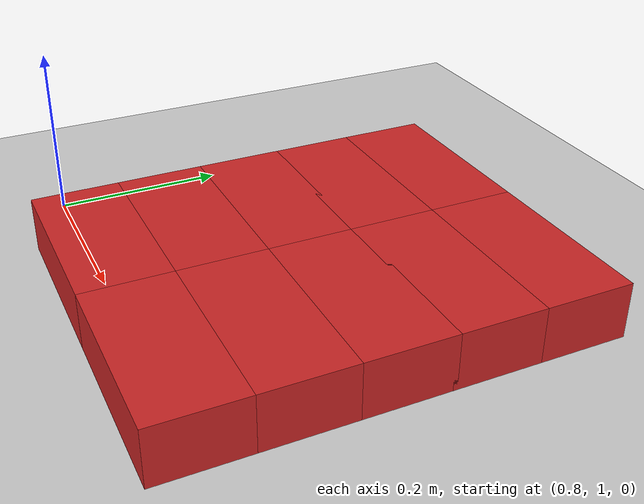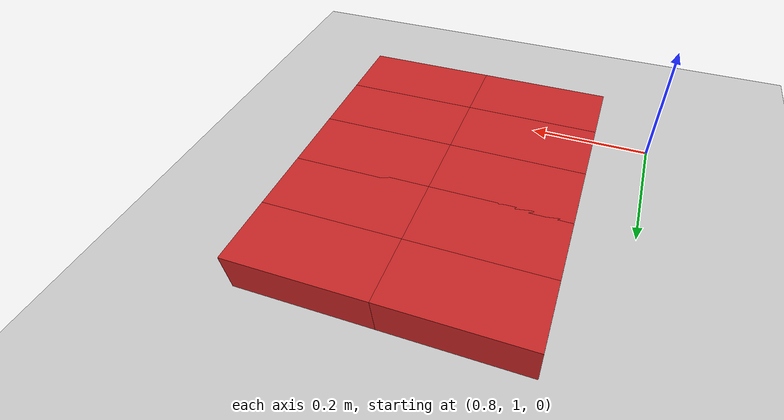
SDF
<?xml version="1.0" ?>
<sdf version="1.6">
    <world name="default">
        <include>
            <uri>model://ground_plane</uri>
        </include>
        <include>
            <uri>model://sun</uri>
        </include>

        <include>
            <uri>model://standard_brick</uri>
            <pose>1 1 0.0325  0 0 0</pose>
        </include>
        <include>
            <uri>model://standard_brick</uri>
            <pose>1 1.1025 0.0325  0 0 0</pose>
        </include>
        <include>
            <uri>model://standard_brick</uri>
            <pose>1 1.205 0.0325  0 0 0</pose>
        </include>
        <include>
            <uri>model://standard_brick</uri>
            <pose>1 1.3025 0.0325  0 0 0</pose>
        </include>
        <include>
            <uri>model://standard_brick</uri>
            <pose>1 1.405 0.0325  0 0 0</pose>
        </include>
        <include>
            <uri>model://standard_brick</uri>
            <pose>1.215 1 0.0325  0 0 0</pose>
        </include>
        <include>
            <uri>model://standard_brick</uri>
            <pose>1.215 1.1025 0.0325  0 0 0</pose>
        </include>
        <include>
            <uri>model://standard_brick</uri>
            <pose>1.215 1.205 0.0325  0 0 0</pose>
        </include>
        <include>
            <uri>model://standard_brick</uri>
            <pose>1.215 1.3025 0.0325  0 0 0</pose>
        </include>
        <include>
            <uri>model://standard_brick</uri>
            <pose>1.215 1.405 0.0325  0 0 0</pose>
        </include>
    </world>
</sdf>

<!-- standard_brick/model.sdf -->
<sdf version='1.6'>
  <model name='standard_brick'>
    <link name='link'>
      <inertial>
        <mass>2.04117</mass>
        <inertia>
          <ixx>0.00250575</ixx>
          <ixy>0</ixy>
          <ixz>0</ixz>
          <iyy>0.00858142</iyy>
          <iyz>0</iyz>
          <izz>0.00964984</izz>
        </inertia>
        <pose frame=''>0 0 0 0 -0 0</pose>
      </inertial>
      <self_collide>0</self_collide>
      <enable_wind>0</enable_wind>
      <kinematic>0</kinematic>
      <pose frame=''>0 0 0 0 -0 0</pose>
      <gravity>1</gravity>
      <visual name='visual'>
        <geometry>
          <box>
            <size>0.215 0.1025 0.065</size>
          </box>
        </geometry>
        <material>
          <script>
            <name>Gazebo/Red</name>
            <uri>file://media/materials/scripts/gazebo.material</uri>
          </script>
          <shader type='vertex'>
            <normal_map>__default__</normal_map>
          </shader>
          <ambient>0.3 0.3 0.3 1</ambient>
          <diffuse>0.7 0.7 0.7 1</diffuse>
          <specular>0.01 0.01 0.01 1</specular>
          <emissive>0 0 0 1</emissive>
        </material>
        <pose frame=''>0 0 0 0 -0 0</pose>
        <transparency>0</transparency>
        <cast_shadows>1</cast_shadows>
      </visual>
      <collision name='collision'>
        <laser_retro>0</laser_retro>
        <max_contacts>10</max_contacts>
        <pose frame=''>0 0 0 0 -0 0</pose>
        <geometry>
          <box>
            <size>0.215 0.1025 0.065</size>
          </box>
        </geometry>
        <surface>
          <friction>
            <ode>
              <mu>1</mu>
              <mu2>1</mu2>
              <fdir1>0 0 0</fdir1>
              <slip1>0</slip1>
              <slip2>0</slip2>
            </ode>
            <torsional>
              <coefficient>1</coefficient>
              <patch_radius>0</patch_radius>
              <surface_radius>0</surface_radius>
              <use_patch_radius>1</use_patch_radius>
              <ode>
                <slip>0</slip>
              </ode>
            </torsional>
          </friction>
          <bounce>
            <restitution_coefficient>0</restitution_coefficient>
            <threshold>1e+06</threshold>
          </bounce>
          <contact>
            <collide_without_contact>0</collide_without_contact>
            <collide_without_contact_bitmask>1</collide_without_contact_bitmask>
            <collide_bitmask>1</collide_bitmask>
            <ode>
              <soft_cfm>0</soft_cfm>
              <soft_erp>0.2</soft_erp>
              <kp>1e+13</kp>
              <kd>1</kd>
              <max_vel>0.01</max_vel>
              <min_depth>0</min_depth>
            </ode>
            <bullet>
              <split_impulse>1</split_impulse>
              <split_impulse_penetration_threshold>-0.01</split_impulse_penetration_threshold>
              <soft_cfm>0</soft_cfm>
              <soft_erp>0.2</soft_erp>
              <kp>1e+13</kp>
              <kd>1</kd>
            </bullet>
          </contact>
        </surface>
      </collision>
    </link>
    <static>0</static>
    <allow_auto_disable>1</allow_auto_disable>
  </model>
</sdf>
